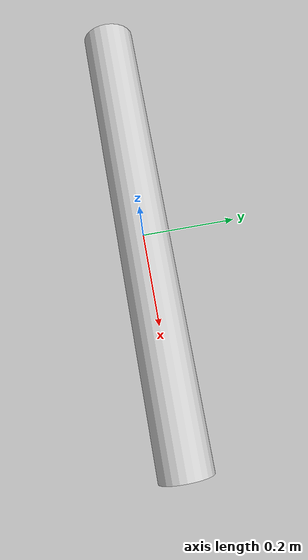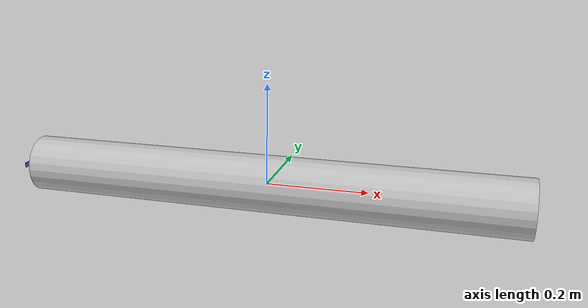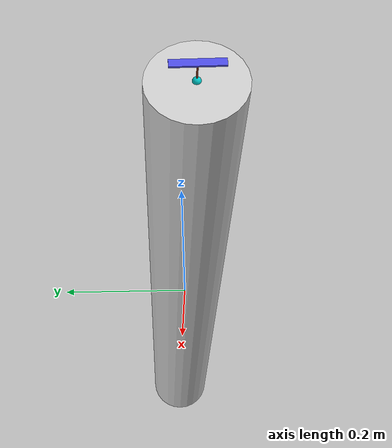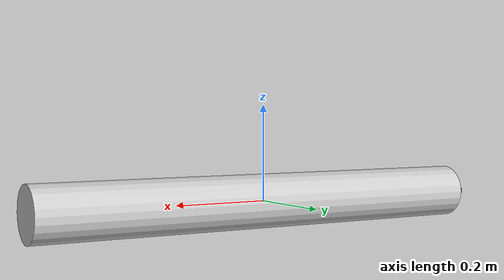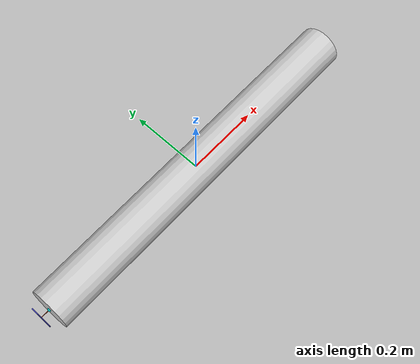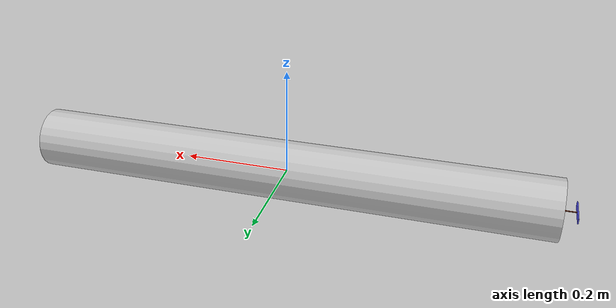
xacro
<?xml version="1.0"?>
<robot name="auv" xmlns:xacro="http://www.ros.org/wiki/xacro">

    <xacro:include filename="common_properties.xacro" />
    <xacro:include filename="auv_basic2.xacro" />
    <xacro:include filename="auv_thrust.xacro" />

    <joint name="base_rudder_base_joint" type="fixed">
        <parent link="cylinder_link" />
        <child link="rudder_base" />
        <origin xyz="-${base_length/2} 0 0" rpy="0 0 ${pi}" />
    </joint>

</robot>

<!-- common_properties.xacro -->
<robot xmlns:xacro="http://www.ros.org/wiki/xacro">

    <material name="grey">
        <color rgba="0.5 0.5 0.5 1" />
    </material>

    <material name="white">
        <color rgba="1 1 1 1" />
    </material>
    <material name="orange">
        <color rgba="1 0.3 0.1 1" />
    </material>
    <material name="blue">
        <color rgba="0.2 0.2 1 1" />
    </material>
    <material name="black">
        <color rgba="0 0 0 1" />
    </material>

    <xacro:macro name="box_inertia" params="m x y z o_xyz o_rpy">
        <inertial>
            <mass value="${m}" />
            <origin xyz="${o_xyz}" rpy="${o_rpy}" />
            <inertia ixx="${(m/12) * (y*y + z*z)}" ixy="0" ixz="0"
                iyy="${(m/12) * (x*x + z*z)}" iyz="0"
                izz="${(m/12) * (x*x + y*y)}" />
        </inertial>
    </xacro:macro>

    <xacro:macro name="sphere_inertia" params="m r o_xyz o_rpy">
        <inertial>
            <mass value="${m}" />
            <origin xyz="${o_xyz}" rpy="${o_rpy}" />
            <inertia ixx="${(2/5) * m * r * r}" ixy="0" ixz="0"
                iyy="${(2/5) * m * r * r}" iyz="0"
                izz="${(2/5) * m * r * r}" />
        </inertial>
    </xacro:macro>

    <xacro:macro name="cylinder_inertia" params="m r l o_xyz o_rpy">
        <inertial>
            <mass value="${m}" />
            <origin xyz="${o_xyz}" rpy="${o_rpy}" />
            <inertia
                ixx="${(m/12)*(3*r*r + l*l)}" ixy="0" ixz="0"
                iyy="${(m/12)*(3*r*r + l*l)}" iyz="0"
                izz="${(m/2)*(r*r)}"
            />
        </inertial>
    </xacro:macro>

</robot>

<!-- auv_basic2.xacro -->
<robot name="auv" xmlns:xacro="http://www.ros.org/wiki/xacro">

    <xacro:property name="base_length" value="1.0" />
    <xacro:property name="base_radius" value="0.057" />
    <xacro:property name="thruster_radius" value="0.045" />
    <xacro:property name="thruster_thickness" value="0.01" />
    <xacro:property name="thruster_offset" value="0.01" />

    <link name="base_link" />

    <joint name="base_to_cylinder" type="fixed">
        <parent link="base_link" />
        <child link="cylinder_link" />
        <origin xyz="0 0 0" rpy="0 0 0" />
    </joint>

    <link name="cylinder_link">
        <visual>
            <origin xyz="0 0 0" rpy="0 ${pi/2} 0" />
            <geometry>
                <cylinder length="${base_length}" radius="${base_radius}" />
            </geometry>
            <material name="color1">
                <color rgba="0.8 0.8 0.8 1" />
            </material>
        </visual>

        <collision>
            <geometry>
                <box size="${base_length} ${base_radius*2} ${base_radius*2}" />
            </geometry>
            <origin xyz="0 0 0" rpy="0 0 0" />
        </collision>

        <inertial>
            <!-- this will make it neutral. use collision as volume -->
            <mass value="12" />

            <inertia
                ixx="0.018"
                ixy="0.0"
                ixz="0.0"
                iyy="1.1"
                iyz="0.0"
                izz="1.1"
            />
            <origin xyz="0 0 -0.03" rpy="0 0 0" />
        </inertial>

    </link>

</robot>

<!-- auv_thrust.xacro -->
<robot xmlns:xacro="http://www.ros.org/wiki/xacro">

    <xacro:property name="rudder_base_radius" value="0.005" />

    <xacro:property name="axis_length" value="0.02" />
    <xacro:property name="axis_radius" value="0.001" />

    <xacro:property name="yaw_limit_rad" value="0.785" />
    <xacro:property name="pitch_limit_rad" value="0.5" />

    <xacro:property name="thruster_radius" value="0.03" />
    <xacro:property name="thruster_thickness" value="0.002" />
    <xacro:property name="thruster_blade_width" value="0.01" />

    <link name="rudder_base">
        <visual>
            <origin xyz="0 0 0" rpy="0 0 0" />
            <geometry>
                <sphere radius="${rudder_base_radius}" />
            </geometry>
            <material name="yellowish1">
                <color rgba="0 0.8 0.8 1" />
            </material>
        </visual>
        <collision>
            <origin xyz="0 0 0" rpy="0 0 0" />
            <geometry>
                <sphere radius="${rudder_base_radius}" />
            </geometry>
        </collision>
        <xacro:sphere_inertia
            m="0.001"
            r="${rudder_base_radius}"
            o_xyz="0 0 0"
            o_rpy="0 0 0"
        />
    </link>

    <link name="rod_link">
        <visual>
            <origin xyz="${axis_length/2} 0 0" rpy="0 ${pi/2} 0" />
            <geometry>
                <cylinder radius="${axis_radius}" length="${axis_length}" />
            </geometry>
            <material name="somecolor2">
                <color rgba="0.5 0.2 0.1 1" />
            </material>
        </visual>
        <collision>
            <origin xyz="${axis_length/2} 0 0" rpy="0 ${pi/2} 0" />
            <geometry>
                <cylinder radius="${axis_radius}" length="${axis_length}" />
            </geometry>
        </collision>
        <xacro:cylinder_inertia
            m="0.001"
            r="${axis_radius}"
            l="${axis_length}"
            o_xyz="${axis_length/2} 0 0"
            o_rpy="0 ${pi/2} 0"
        />
    </link>

    <joint name="yaw_joint" type="revolute">
        <parent link="rudder_base" />
        <child link="rod_intermediate_link" />
        <origin xyz="${rudder_base_radius} 0 0" rpy="0 0 0" />
        <axis xyz="0 0 1" />
        <limit lower="-${yaw_limit_rad}" upper="${yaw_limit_rad}" effort="100" velocity="100" />
    </joint>

    <link name="rod_intermediate_link">
        <inertial>
            <mass value="0.0001" />
            <inertia ixx="0.0001" ixy="0.0" ixz="0.0" iyy="0.0001" iyz="0.0" izz="0.0001" />
            <origin xyz="0 0 0" rpy="0 0 0" />
        </inertial>
    </link>

    <joint name="pitch_joint" type="revolute">
        <parent link="rod_intermediate_link" />
        <child link="rod_link" />
        <axis xyz="0 1 0" />
        <limit lower="-${pitch_limit_rad}" upper="${pitch_limit_rad}" effort="100" velocity="100" />
    </joint>

    <link name="thruster_link">
        <visual>
            <origin xyz="0 0 0" rpy="0 0 0" />
            <geometry>
                <box size="${thruster_thickness} ${thruster_radius*2} ${thruster_blade_width}" />
            </geometry>
            <material name="blueish">
                <color rgba="0.3 0.3 0.9 1" />
            </material>
        </visual>
        <collision>
            <origin xyz="0 0 0" rpy="0 0 0" />
            <geometry>
                <sphere radius="0.005" />
            </geometry>
        </collision>
        <xacro:sphere_inertia m="0.001" r="0.005"
            o_xyz="0 0 0" o_rpy="0 0 0" />
    </link>

    <joint name="cylinder_thruster_joint" type="continuous">
        <parent link="rod_link" />
        <child link="thruster_link" />
        <origin xyz="${axis_length + thruster_thickness/2} 0 0" rpy="0 0 0" />
        <axis xyz="-1 0 0" />
    </joint>

</robot>
